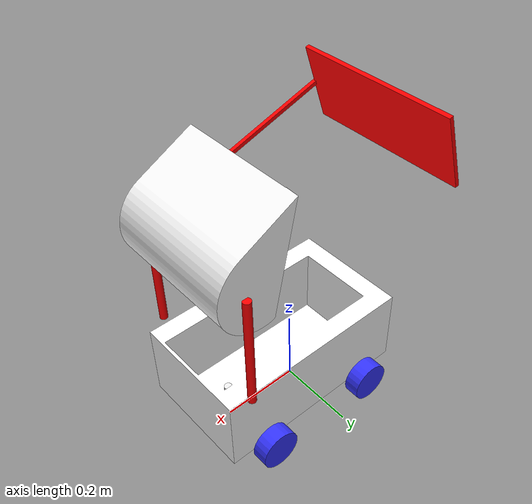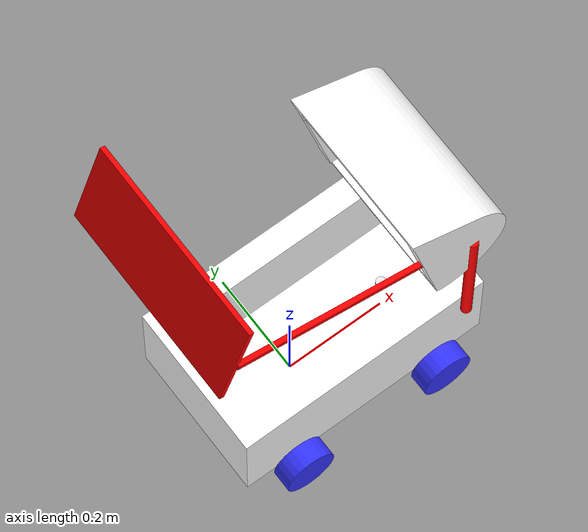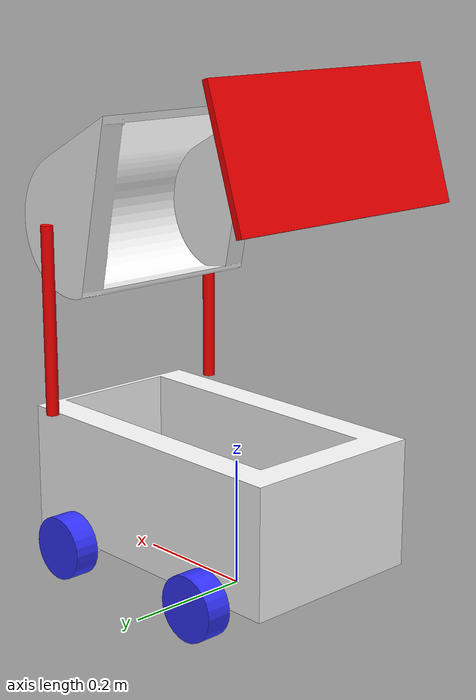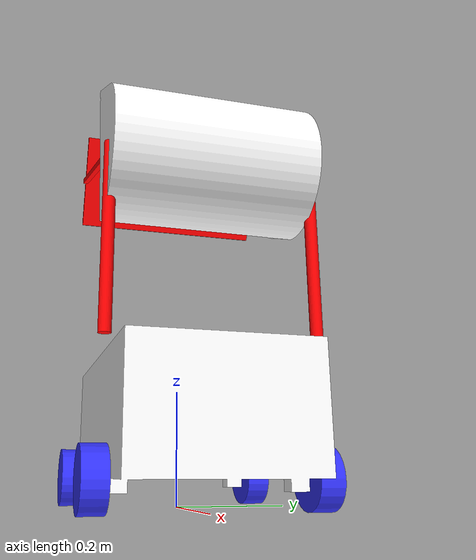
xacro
<?xml version="1.0"?>
<robot xmlns:xacro="http://www.ros.org/wiki/xacro"  name="robot">

    <xacro:include filename="robot_core.xacro" />
    <xacro:include filename="robot_control.xacro" />
    <xacro:include filename="gazebo_control.xacro" />

    <xacro:include filename="ARM_transmission.xacro" />
    <xacro:include filename="bucket_transmission.xacro" />
    <xacro:include filename="hand_transmission.xacro" />
    <xacro:include filename="pris_transmission.xacro" />
    <xacro:include filename="lidar.xacro" />
    <ros2_control name="gripper_robot_gazebo_system" type="system">
        <hardware>
            <plugin>gazebo_ros2_control/GazeboSystem</plugin>
        </hardware>
        <xacro:R_ARM_transmission/>
        <xacro:bucket_transmission/>
        <xacro:hand_transmission/>
        <xacro:pris_transmission/>
    </ros2_control>
    <xacro:robot_controller/>
</robot>

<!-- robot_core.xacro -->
<robot xmlns:xacro="http://www.ros.org/wiki/xacro" >
    <xacro:include filename="inertial_macros.xacro" />

    <material name="white">
        <color rgba="1 1 1 1" />
    </material>

    <material name="orange">
        <color rgba="1 0.3 0.1 1"/>
    </material>

    <material name="blue">
        <color rgba="0.2 0.2 1 1"/>
    </material>

    <material name="black">
        <color rgba="0 0 0 1"/>
    </material>

    <material name="red">
        <color rgba="1 0 0 1"/>
    </material>

    <!-- BASE LINK -->

    <link name="base_link">

    </link>
    <joint name="chassis_joint" type="fixed">
        <parent link="base_link"/>
        <child link="chassis"/>
        <origin xyz="-0.1 0 0"/>
    </joint>
    <link name="chassis">
    <visual>
        <origin xyz="0.15 0 0.075" rpy="0 0 ${pi/2}"/>
        <geometry>
            <mesh filename="file://$(find articubot_one)/description/Body1.dae" scale="0.01 0.01 0.01"/>
        </geometry>
        <material name="white"/>
    </visual>
    <collision>
        <origin xyz="0.15 0 0.075" rpy="0 0 ${pi/2}"/>
        <geometry>/home/swg/robot_ws/src/articubot_one/model/Body1.dae
            <mesh filename="file://$(find articubot_one)/description/Body1.dae" scale="0.01 0.01 0.01"/>
        </geometry>
    </collision>
    <xacro:inertial_box mass="100" x="0.3" y="0.3" z="0.15">
        <origin xyz="0.2 0 0.1" rpy="0 0 0"/>
    </xacro:inertial_box>
    </link>
    <gazebo reference="chassis">
    <material>Gazebo/Green</material>
    </gazebo>
    <!-- LEFT WHEEL -->

    <joint name="left_wheel_joint" type="continuous">
        <parent link="base_link"/>
        <child link="left_wheel"/>
        <origin xyz="0.2 0.175 0.05" rpy="-${pi/2} 0 0"/>
        <axis xyz="0 0 -1"/>
    </joint>
    <link name="left_wheel">
    <visual>
        <geometry>
            <cylinder length="0.04" radius="0.05" />
        </geometry>
        <material name="blue"/>
    </visual>
    <collision>
        <geometry>
            <cylinder length="0.04" radius="0.05" />
        </geometry>
    </collision>
    <xacro:inertial_cylinder mass="10" length="0.05" radius="0.05">
        <origin xyz="0 0 0" rpy="0 0 0"/>
    </xacro:inertial_cylinder>
    </link>

    <!-- RIGHT WHEEL -->

<joint name="right_wheel_joint" type="continuous">
    <parent link="base_link"/>
    <child link="right_wheel"/>
    <origin xyz="0.2 -0.175 0.05" rpy="${pi/2} 0 0"/>
    <axis xyz="0 0 1"/>
</joint>

<link name="right_wheel">
    <visual>
        <geometry>
            <cylinder length="0.04" radius="0.05" />
        </geometry>
        <material name="blue"/>
    </visual>

    <collision>
        <geometry>
            <cylinder length="0.04" radius="0.05" />
        </geometry>
    </collision>
    <xacro:inertial_cylinder mass="10" length="0.05" radius="0.05">
        <origin xyz="0 0 0" rpy="0 0 0"/>
    </xacro:inertial_cylinder>
</link>
<!-- R LEFT WHEEL -->

    <joint name="R_left_wheel_joint" type="continuous">
        <parent link="base_link"/>
        <child link="R_left_wheel"/>
        <origin xyz="-0.1 0.175 0.05" rpy="-${pi/2} 0 0"/>
        <axis xyz="0 0 -1"/>
    </joint>
    <link name="R_left_wheel">
    <visual>
        <geometry>
            <cylinder length="0.04" radius="0.05" />
        </geometry>
        <material name="blue"/>
    </visual>
    <collision>
        <geometry>
            <cylinder length="0.04" radius="0.05" />
        </geometry>
    </collision>
    <xacro:inertial_cylinder mass="0.1" length="0.05" radius="0.05">
        <origin xyz="0 0 0" rpy="0 0 0"/>
    </xacro:inertial_cylinder>
    </link>

    <!-- R RIGHT WHEEL -->

<joint name="R_right_wheel_joint" type="continuous">
    <parent link="base_link"/>
    <child link="R_right_wheel"/>
    <origin xyz="-0.1 -0.175 0.05" rpy="${pi/2} 0 0"/>
    <axis xyz="0 0 1"/>
</joint>

<link name="R_right_wheel">
    <visual>
        <geometry>
            <cylinder length="0.04" radius="0.05" />
        </geometry>
        <material name="blue"/>
    </visual>

    <collision>
        <geometry>
            <cylinder length="0.04" radius="0.05" />
        </geometry>
    </collision>
    <xacro:inertial_cylinder mass="10" length="0.05" radius="0.05">
        <origin xyz="0 0 0" rpy="0 0 0"/>
    </xacro:inertial_cylinder>
</link>
<gazebo reference="R_right_wheel">
    <material>Gazebo/Red</material>
</gazebo>

<!--R_ARM-->
<joint name="R_ARM_joint" type="revolute">
    <parent link="base_link"/>
    <child link="R_ARM"/>
    <origin xyz="0.25 -0.17 0.25" rpy="0 0 0"/>
    <axis xyz="0 1 0"/>
     <limit effort="2000.0" lower="0.0" upper="${2.191}" velocity="0.5"/>
     <dynamics damping="1" friction="0.6"/>
</joint>

<link name="R_ARM">
    <visual>
        <origin xyz="0 0 0.15" rpy="0 0 0"/>
        <geometry>
            <cylinder length="0.3" radius="0.01" />
        </geometry>
        <material name="red"/>
    </visual>
    <collision>
        <origin xyz="0 0 0.15" rpy="0 0 0"/>
        <geometry>
            <cylinder length="0.3" radius="0.01" />
        </geometry>
    </collision>
    <xacro:inertial_cylinder mass="0.01" length="0.3" radius="0.01">
        <origin xyz="0 0 0.15" rpy="0 0 0"/>
    </xacro:inertial_cylinder>
</link>

<gazebo reference="R_ARM">
    <material>Gazebo/Red</material>
</gazebo>

<!--L_ARM-->
<joint name="L_ARM_joint" type="fixed">
    <parent link="R_ARM"/>
    <child link="L_ARM"/>
    <origin xyz="0 0.33 0" rpy="0 0 0"/>
    <axis xyz="0 1 0"/>
</joint>

<link name="L_ARM">
    <visual>
        <origin xyz="0 0 0.15" rpy="0 0 0"/>
        <geometry>
            <cylinder length="0.3" radius="0.01" />
        </geometry>
        <material name="red"/>
    </visual>
    <collision>
        <origin xyz="0 0 0.15" rpy="0 0 0"/>
        <geometry>
            <cylinder length="0.3" radius="0.01" />
        </geometry>
    </collision>
    <xacro:inertial_cylinder mass="0.01" length="0.3" radius="0.01">
        <origin xyz="0 0 0.15" rpy="0 0 0"/>
    </xacro:inertial_cylinder>
</link>

<gazebo reference="L_ARM">
    <material>Gazebo/Red</material>
</gazebo>

<!-- bucket_joint -->
<joint name="bucket_joint" type="revolute">
    <parent link="R_ARM"/>
    <child link="bucket"/>
    <origin xyz="0 0.16 0.3" rpy="0 0 ${pi/2}"/>
    <axis xyz="-1 0 0"/>
     <limit effort="1000.0" lower="2.174" upper="3.14" velocity="0.5"/>
     <dynamics damping="1" friction="1"/>
</joint>

<link name="bucket">
<visual>
    <geometry>
        <mesh filename="file://$(find articubot_one)/description/bucket.dae" scale="0.52 0.5 0.5"/>
    </geometry>
    <material name="white"/>
</visual>
<collision>
    <geometry>/home/swg/robot_ws/src/articubot_one/model/Body1.dae
        <mesh filename="file://$(find articubot_one)/description/bucket.dae" scale="0.52 0.5 0.5"/>
    </geometry>
</collision>
<xacro:inertial_box mass="0.001" x="0.2" y="0.2" z="0.15">
    <origin xyz="0 0 0" rpy="0 0 0"/>
</xacro:inertial_box>
</link>

<gazebo reference="bucket">
    <material>Gazebo/White</material>
</gazebo>

<!-- hand_joint -->
<joint name="hand_joint" type="revolute">
    <parent link="bucket"/>
    <child link="hand"/>
    <origin xyz="-0.15 -0 0" rpy="0 0 ${pi/2}"/>
    <axis xyz="0 -1 0"/>
     <limit effort="1000.0" lower="1.257" upper="1.545" velocity="0.5"/>
     <dynamics damping="1" friction="0.01"/>
</joint>

<link name="hand">
    <visual>
        <origin xyz="0 0 0.3" rpy="0 0 0"/>
        <geometry>
            <box size="0.01 0.01 0.4" />
        </geometry>
        <material name="red"/>
    </visual>
    <collision>
        <origin xyz="0 0 0.3" rpy="0 0 0"/>
        <geometry>
            <box size="0.01 0.01 0.4" />
        </geometry>
    </collision>
    <xacro:inertial_box mass="0.001" x="0.01" y="0.01" z="0.4  ">
        <origin xyz="0 0 0.3" rpy="0 0 0"/>
    </xacro:inertial_box>
</link>
<gazebo reference="hand">
    <material>Gazebo/White</material>
</gazebo>

<joint name="pris_joint" type="prismatic">
    <parent link="hand"/>
    <child link="pris"/>
    <origin xyz="0 0 0.3" rpy="0 ${pi/2} ${pi/2}"/>
    <axis xyz="1 0 0"/>
     <limit effort="1000.0" lower="0.0" upper="0.295" velocity="0.3"/>
     <dynamics damping="1" friction="0.11"/>
</joint>

<link name="pris">
    <visual>
        <origin xyz="-0.2 0 -0.2" rpy="0 0 0"/>
        <geometry>
            <box size="0.01 0.2 0.4" />
        </geometry>
        <material name="red"/>
    </visual>
    <collision>
        <origin xyz="-0.2 0 -0.2" rpy="0 0 0"/>
        <geometry>
            <box size="0.01 0.01 0.4" />
        </geometry>
    </collision>
    <xacro:inertial_box mass="0.001" x="0.01" y="0.02" z="0.4  ">
        <origin xyz="-0 0 -0" rpy="0 0 0"/>
    </xacro:inertial_box>

</link>
<gazebo reference="pris">
    <material>Gazebo/White</material>
</gazebo>
<gazebo reference="left_wheel">

    <mu1 value="0.5"/>
    <mu2 value="0.8"/>
</gazebo>

<gazebo reference="right_wheel">

    <mu1 value="0.5"/>
    <mu2 value="0.8"/>
</gazebo>

<gazebo reference="R_left_wheel">

    <mu1 value="0.5"/>
    <mu2 value="0.8"/>
</gazebo>
<gazebo reference="R_right_wheel">
    <mu1 value="0.5"/>
    <mu2 value="0.8"/>
</gazebo>

</robot>

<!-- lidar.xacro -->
<robot xmlns:xacro="http://www.ros.org/wiki/xacro" >

    <joint name="laser_joint" type="fixed">
        <parent link="chassis"/>
        <child link="laser_frame"/>
        <origin xyz="0.3 0 0.1" rpy="0 0 ${pi/2}"/>
    </joint>

    <link name="laser_frame">
        <visual>
            <geometry>
                <cylinder radius="0.01" length="0.01"/>
            </geometry>
        </visual>
        <collision>
            <geometry>
                <cylinder radius="0.01" length="0.01"/>
            </geometry>
        </collision>
        <xacro:inertial_cylinder mass="0.1" length="0.01" radius="0.01">
            <origin xyz="0 0 0" rpy="0 0 0"/>
        </xacro:inertial_cylinder>
    </link>

    <gazebo reference="laser_frame">
        <material>Gazebo/White</material>

        <sensor name="laser" type="ray">
            <pose> 0 0 0 0 0 0 </pose>
            <visualize>true</visualize>
            <update_rate>10</update_rate>
            <ray>
                <scan>
                    <horizontal>
                        <samples>360</samples>
                        <min_angle>-3.14 </min_angle>
                        <max_angle>3.14 </max_angle>
                    </horizontal>
                </scan>
                <range>
                    <min>0.5</min>
                    <max>12</max>
                </range>
            </ray>

            <plugin name="laser_controller" filename="libgazebo_ros_ray_sensor.so">
                <ros>
                    <argument>~/out:=scan</argument>
                </ros>
                <output_type>sensor_msgs/LaserScan</output_type>
                <frame_name>laser_frame</frame_name>
            </plugin>
        </sensor>
    </gazebo>

</robot>
